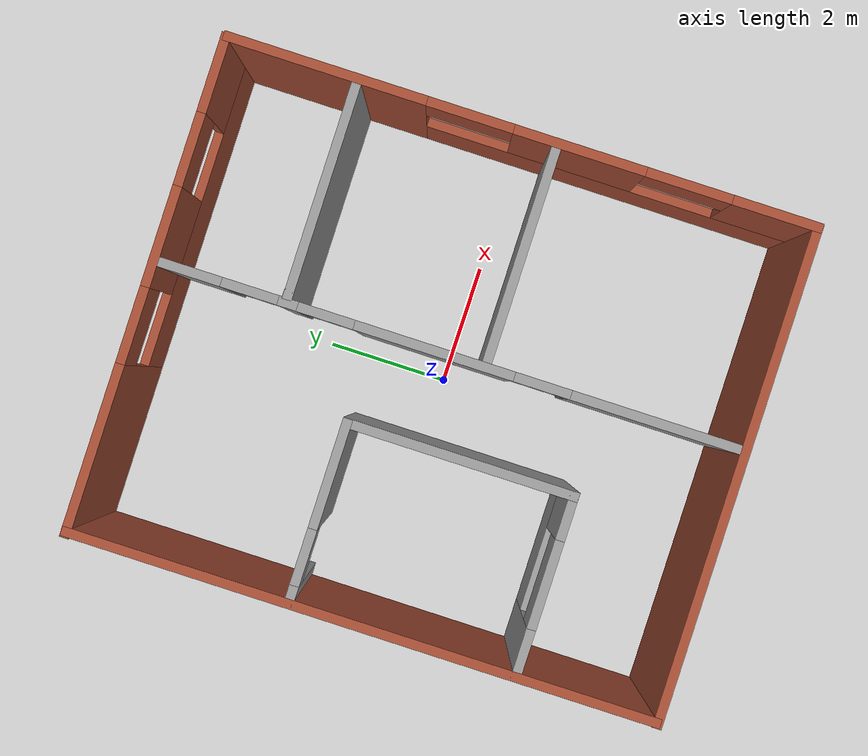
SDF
<sdf version="1.7">
 <world name="default">
  <light name="sun" type="directional">
   <pose>0 0 10 0 -0 0</pose>
   <diffuse>0.8 0.8 0.8 1</diffuse>
   <specular>0.2 0.2 0.2 1</specular>
   <attenuation>
    <range>1000</range>
    <constant>0.9</constant>
    <linear>0.01</linear>
    <quadratic>0.001</quadratic>
   </attenuation>
   <direction>-0.5 0.1 -0.9</direction>
   <spot><inner_angle>0</inner_angle><outer_angle>0</outer_angle><falloff>0</falloff></spot>
  </light>
  <model name="ground_plane">
   <static>1</static>
   <link name="link">
    <collision name="collision">
     <geometry><plane><normal>0 0 1</normal><size>100 100</size></plane></geometry>
     <surface><friction><ode><mu>100</mu><mu2>50</mu2></ode></friction></surface>
    </collision>
    <visual name="visual">
     <cast_shadows>0</cast_shadows>
     <geometry><plane><normal>0 0 1</normal><size>100 100</size></plane></geometry>
     <material>
      <script><uri>file://media/materials/scripts/gazebo.material</uri><name>Gazebo/Grey</name></script>
     </material>
    </visual>
   </link>
  </model>
  <gravity>0 0 -9.8</gravity>
  <magnetic_field>6e-06 2.3e-05 -4.2e-05</magnetic_field>
  <atmosphere type="adiabatic"/>
  <physics type="ode">
   <max_step_size>0.001</max_step_size>
   <real_time_factor>1</real_time_factor>
   <real_time_update_rate>1000</real_time_update_rate>
  </physics>
  <scene><ambient>0.4 0.4 0.4 1</ambient><background>0.7 0.7 0.7 1</background><shadows>1</shadows></scene>
  <audio><device>default</device></audio>
  <spherical_coordinates>
   <surface_model>EARTH_WGS84</surface_model>
   <latitude_deg>0</latitude_deg>
   <longitude_deg>0</longitude_deg>
   <elevation>0</elevation>
   <heading_deg>0</heading_deg>
  </spherical_coordinates>
  <model name="my_world_example">
   <link name="Wall_14">
    <pose>0.509968 2.60791 0 0 -0 0</pose>
    <visual name="Wall_14_Visual">
     <pose>0 0 1.25 0 -0 0</pose>
     <geometry><box><size>0.15 0.15 2.5</size></box></geometry>
     <material>
      <script><uri>file://media/materials/scripts/gazebo.material</uri><name>Gazebo/Grey</name></script>
      <ambient>1 1 1 1</ambient>
      <shader type="pixel"/>
     </material>
     <meta><layer>0</layer></meta>
    </visual>
    <collision name="Wall_14_Collision">
     <pose>0 0 1.25 0 -0 0</pose>
     <geometry><box><size>0.15 0.15 2.5</size></box></geometry>
     <surface>
      <friction>
       <ode><mu>1</mu><mu2>1</mu2><fdir1>0 0 0</fdir1><slip1>0</slip1><slip2>0</slip2></ode>
       <torsional>
        <coefficient>1</coefficient>
        <patch_radius>0</patch_radius>
        <surface_radius>0</surface_radius>
        <use_patch_radius>1</use_patch_radius>
        <ode><slip>0</slip></ode>
       </torsional>
      </friction>
      <bounce><restitution_coefficient>0</restitution_coefficient><threshold>1e+06</threshold></bounce>
      <contact>
       <collide_without_contact>0</collide_without_contact>
       <collide_without_contact_bitmask>1</collide_without_contact_bitmask>
       <collide_bitmask>1</collide_bitmask>
       <ode>
        <soft_cfm>0</soft_cfm>
        <soft_erp>0.2</soft_erp>
        <kp>1e+13</kp>
        <kd>1</kd>
        <max_vel>0.01</max_vel>
        <min_depth>0</min_depth>
       </ode>
       <bullet>
        <split_impulse>1</split_impulse>
        <split_impulse_penetration_threshold>-0.01</split_impulse_penetration_threshold>
        <soft_cfm>0</soft_cfm>
        <soft_erp>0.2</soft_erp>
        <kp>1e+13</kp>
        <kd>1</kd>
       </bullet>
      </contact>
     </surface>
    </collision>
   </link>
   <link name="Wall_3">
    <pose>3.93862 -0.015464 0 0 0 -1.5708</pose>
    <visual name="Wall_3_Visual_4">
     <pose>-0.833377 0 2.15 0 -0 0</pose>
     <geometry><box><size>1.378 0.15 0.7</size></box></geometry>
     <material>
      <script><uri>file://media/materials/scripts/gazebo.material</uri><name>Gazebo/Bricks</name></script>
      <ambient>1 1 1 1</ambient>
      <shader type="pixel"/>
     </material>
     <meta><layer>0</layer></meta>
    </visual>
    <visual name="Wall_3_Visual_5">
     <pose>2.64172 0 2.15 0 -0 0</pose>
     <geometry><box><size>1.37 0.15 0.7</size></box></geometry>
     <material>
      <script><uri>file://media/materials/scripts/gazebo.material</uri><name>Gazebo/Bricks</name></script>
      <ambient>1 1 1 1</ambient>
      <shader type="pixel"/>
     </material>
     <meta><layer>0</layer></meta>
    </visual>
    <visual name="Wall_3_Visual_3">
     <pose>4.03836 0 1.75 0 -0 0</pose>
     <geometry><box><size>1.42328 0.15 1.5</size></box></geometry>
     <material>
      <script><uri>file://media/materials/scripts/gazebo.material</uri><name>Gazebo/Bricks</name></script>
      <ambient>1 1 1 1</ambient>
      <shader type="pixel"/>
     </material>
     <meta><layer>0</layer></meta>
    </visual>
    <visual name="Wall_3_Visual_1">
     <pose>1.61381 0 0.5 0 -0 0</pose>
     <geometry><box><size>6.27238 0.15 1</size></box></geometry>
     <material>
      <script><uri>file://media/materials/scripts/gazebo.material</uri><name>Gazebo/Bricks</name></script>
      <ambient>1 1 1 1</ambient>
      <shader type="pixel"/>
     </material>
     <meta><layer>0</layer></meta>
    </visual>
    <visual name="Wall_3_Visual_2">
     <pose>0.90617 0 1.75 0 -0 0</pose>
     <geometry><box><size>2.10109 0.15 1.5</size></box></geometry>
     <material>
      <script><uri>file://media/materials/scripts/gazebo.material</uri><name>Gazebo/Bricks</name></script>
      <ambient>1 1 1 1</ambient>
      <shader type="pixel"/>
     </material>
     <meta><layer>0</layer></meta>
    </visual>
    <visual name="Wall_3_Visual_0">
     <pose>-3.13619 0 1.25 0 -0 0</pose>
     <geometry><box><size>3.22762 0.15 2.5</size></box></geometry>
     <material>
      <script><uri>file://media/materials/scripts/gazebo.material</uri><name>Gazebo/Bricks</name></script>
      <ambient>1 1 1 1</ambient>
      <shader type="pixel"/>
     </material>
     <meta><layer>0</layer></meta>
    </visual>
    <collision name="Wall_3_Collision_5">
     <pose>2.64172 0 2.15 0 -0 0</pose>
     <geometry><box><size>1.37 0.15 0.7</size></box></geometry>
     <surface>
      <friction>
       <ode><mu>1</mu><mu2>1</mu2><fdir1>0 0 0</fdir1><slip1>0</slip1><slip2>0</slip2></ode>
       <torsional>
        <coefficient>1</coefficient>
        <patch_radius>0</patch_radius>
        <surface_radius>0</surface_radius>
        <use_patch_radius>1</use_patch_radius>
        <ode><slip>0</slip></ode>
       </torsional>
      </friction>
      <bounce><restitution_coefficient>0</restitution_coefficient><threshold>1e+06</threshold></bounce>
      <contact>
       <collide_without_contact>0</collide_without_contact>
       <collide_without_contact_bitmask>1</collide_without_contact_bitmask>
       <collide_bitmask>1</collide_bitmask>
       <ode>
        <soft_cfm>0</soft_cfm>
        <soft_erp>0.2</soft_erp>
        <kp>1e+13</kp>
        <kd>1</kd>
        <max_vel>0.01</max_vel>
        <min_depth>0</min_depth>
       </ode>
       <bullet>
        <split_impulse>1</split_impulse>
        <split_impulse_penetration_threshold>-0.01</split_impulse_penetration_threshold>
        <soft_cfm>0</soft_cfm>
        <soft_erp>0.2</soft_erp>
        <kp>1e+13</kp>
        <kd>1</kd>
       </bullet>
      </contact>
     </surface>
    </collision>
    <collision name="Wall_3_Collision_2">
     <pose>0.90617 0 1.75 0 -0 0</pose>
     <geometry><box><size>2.10109 0.15 1.5</size></box></geometry>
     <surface>
      <friction>
       <ode><mu>1</mu><mu2>1</mu2><fdir1>0 0 0</fdir1><slip1>0</slip1><slip2>0</slip2></ode>
       <torsional>
        <coefficient>1</coefficient>
        <patch_radius>0</patch_radius>
        <surface_radius>0</surface_radius>
        <use_patch_radius>1</use_patch_radius>
        <ode><slip>0</slip></ode>
       </torsional>
      </friction>
      <bounce><restitution_coefficient>0</restitution_coefficient><threshold>1e+06</threshold></bounce>
      <contact>
       <collide_without_contact>0</collide_without_contact>
       <collide_without_contact_bitmask>1</collide_without_contact_bitmask>
       <collide_bitmask>1</collide_bitmask>
       <ode>
        <soft_cfm>0</soft_cfm>
        <soft_erp>0.2</soft_erp>
        <kp>1e+13</kp>
        <kd>1</kd>
        <max_vel>0.01</max_vel>
        <min_depth>0</min_depth>
       </ode>
       <bullet>
        <split_impulse>1</split_impulse>
        <split_impulse_penetration_threshold>-0.01</split_impulse_penetration_threshold>
        <soft_cfm>0</soft_cfm>
        <soft_erp>0.2</soft_erp>
        <kp>1e+13</kp>
        <kd>1</kd>
       </bullet>
      </contact>
     </surface>
    </collision>
    <collision name="Wall_3_Collision_4">
     <pose>-0.833377 0 2.15 0 -0 0</pose>
     <geometry><box><size>1.378 0.15 0.7</size></box></geometry>
     <surface>
      <friction>
       <ode><mu>1</mu><mu2>1</mu2><fdir1>0 0 0</fdir1><slip1>0</slip1><slip2>0</slip2></ode>
       <torsional>
        <coefficient>1</coefficient>
        <patch_radius>0</patch_radius>
        <surface_radius>0</surface_radius>
        <use_patch_radius>1</use_patch_radius>
        <ode><slip>0</slip></ode>
       </torsional>
      </friction>
      <bounce><restitution_coefficient>0</restitution_coefficient><threshold>1e+06</threshold></bounce>
      <contact>
       <collide_without_contact>0</collide_without_contact>
       <collide_without_contact_bitmask>1</collide_without_contact_bitmask>
       <collide_bitmask>1</collide_bitmask>
       <ode>
        <soft_cfm>0</soft_cfm>
        <soft_erp>0.2</soft_erp>
        <kp>1e+13</kp>
        <kd>1</kd>
        <max_vel>0.01</max_vel>
        <min_depth>0</min_depth>
       </ode>
       <bullet>
        <split_impulse>1</split_impulse>
        <split_impulse_penetration_threshold>-0.01</split_impulse_penetration_threshold>
        <soft_cfm>0</soft_cfm>
        <soft_erp>0.2</soft_erp>
        <kp>1e+13</kp>
        <kd>1</kd>
       </bullet>
      </contact>
     </surface>
    </collision>
    <collision name="Wall_3_Collision_3">
     <pose>4.03836 0 1.75 0 -0 0</pose>
     <geometry><box><size>1.42328 0.15 1.5</size></box></geometry>
     <surface>
      <friction>
       <ode><mu>1</mu><mu2>1</mu2><fdir1>0 0 0</fdir1><slip1>0</slip1><slip2>0</slip2></ode>
       <torsional>
        <coefficient>1</coefficient>
        <patch_radius>0</patch_radius>
        <surface_radius>0</surface_radius>
        <use_patch_radius>1</use_patch_radius>
        <ode><slip>0</slip></ode>
       </torsional>
      </friction>
      <bounce><restitution_coefficient>0</restitution_coefficient><threshold>1e+06</threshold></bounce>
      <contact>
       <collide_without_contact>0</collide_without_contact>
       <collide_without_contact_bitmask>1</collide_without_contact_bitmask>
       <collide_bitmask>1</collide_bitmask>
       <ode>
        <soft_cfm>0</soft_cfm>
        <soft_erp>0.2</soft_erp>
        <kp>1e+13</kp>
        <kd>1</kd>
        <max_vel>0.01</max_vel>
        <min_depth>0</min_depth>
       </ode>
       <bullet>
        <split_impulse>1</split_impulse>
        <split_impulse_penetration_threshold>-0.01</split_impulse_penetration_threshold>
        <soft_cfm>0</soft_cfm>
        <soft_erp>0.2</soft_erp>
        <kp>1e+13</kp>
        <kd>1</kd>
       </bullet>
      </contact>
     </surface>
    </collision>
    <collision name="Wall_3_Collision_1">
     <pose>1.61381 0 0.5 0 -0 0</pose>
     <geometry><box><size>6.27238 0.15 1</size></box></geometry>
     <surface>
      <friction>
       <ode><mu>1</mu><mu2>1</mu2><fdir1>0 0 0</fdir1><slip1>0</slip1><slip2>0</slip2></ode>
       <torsional>
        <coefficient>1</coefficient>
        <patch_radius>0</patch_radius>
        <surface_radius>0</surface_radius>
        <use_patch_radius>1</use_patch_radius>
        <ode><slip>0</slip></ode>
       </torsional>
      </friction>
      <bounce><restitution_coefficient>0</restitution_coefficient><threshold>1e+06</threshold></bounce>
      <contact>
       <collide_without_contact>0</collide_without_contact>
       <collide_without_contact_bitmask>1</collide_without_contact_bitmask>
       <collide_bitmask>1</collide_bitmask>
       <ode>
        <soft_cfm>0</soft_cfm>
        <soft_erp>0.2</soft_erp>
        <kp>1e+13</kp>
        <kd>1</kd>
        <max_vel>0.01</max_vel>
        <min_depth>0</min_depth>
       </ode>
       <bullet>
        <split_impulse>1</split_impulse>
        <split_impulse_penetration_threshold>-0.01</split_impulse_penetration_threshold>
        <soft_cfm>0</soft_cfm>
        <soft_erp>0.2</soft_erp>
        <kp>1e+13</kp>
        <kd>1</kd>
       </bullet>
      </contact>
     </surface>
    </collision>
    <collision name="Wall_3_Collision_0">
     <pose>-3.13619 0 1.25 0 -0 0</pose>
     <geometry><box><size>3.22762 0.15 2.5</size></box></geometry>
     <surface>
      <friction>
       <ode><mu>1</mu><mu2>1</mu2><fdir1>0 0 0</fdir1><slip1>0</slip1><slip2>0</slip2></ode>
       <torsional>
        <coefficient>1</coefficient>
        <patch_radius>0</patch_radius>
        <surface_radius>0</surface_radius>
        <use_patch_radius>1</use_patch_radius>
        <ode><slip>0</slip></ode>
       </torsional>
      </friction>
      <bounce><restitution_coefficient>0</restitution_coefficient><threshold>1e+06</threshold></bounce>
      <contact>
       <collide_without_contact>0</collide_without_contact>
       <collide_without_contact_bitmask>1</collide_without_contact_bitmask>
       <collide_bitmask>1</collide_bitmask>
       <ode>
        <soft_cfm>0</soft_cfm>
        <soft_erp>0.2</soft_erp>
        <kp>1e+13</kp>
        <kd>1</kd>
        <max_vel>0.01</max_vel>
        <min_depth>0</min_depth>
       </ode>
       <bullet>
        <split_impulse>1</split_impulse>
        <split_impulse_penetration_threshold>-0.01</split_impulse_penetration_threshold>
        <soft_cfm>0</soft_cfm>
        <soft_erp>0.2</soft_erp>
        <kp>1e+13</kp>
        <kd>1</kd>
       </bullet>
      </contact>
     </surface>
    </collision>
   </link>
   <link name="Wall_33">
    <pose>-3.92017 0.013616 0 0 0 -1.5708</pose>
    <visual name="Wall_33_Visual">
     <pose>0 0 1.25 0 -0 0</pose>
     <geometry><box><size>9.5 0.15 2.5</size></box></geometry>
     <material>
      <script><uri>file://media/materials/scripts/gazebo.material</uri><name>Gazebo/Bricks</name></script>
      <ambient>1 1 1 1</ambient>
      <shader type="pixel"/>
     </material>
     <meta><layer>0</layer></meta>
    </visual>
    <collision name="Wall_33_Collision">
     <pose>0 0 1.25 0 -0 0</pose>
     <geometry><box><size>9.5 0.15 2.5</size></box></geometry>
     <surface>
      <friction>
       <ode><mu>1</mu><mu2>1</mu2><fdir1>0 0 0</fdir1><slip1>0</slip1><slip2>0</slip2></ode>
       <torsional>
        <coefficient>1</coefficient>
        <patch_radius>0</patch_radius>
        <surface_radius>0</surface_radius>
        <use_patch_radius>1</use_patch_radius>
        <ode><slip>0</slip></ode>
       </torsional>
      </friction>
      <bounce><restitution_coefficient>0</restitution_coefficient><threshold>1e+06</threshold></bounce>
      <contact>
       <collide_without_contact>0</collide_without_contact>
       <collide_without_contact_bitmask>1</collide_without_contact_bitmask>
       <collide_bitmask>1</collide_bitmask>
       <ode>
        <soft_cfm>0</soft_cfm>
        <soft_erp>0.2</soft_erp>
        <kp>1e+13</kp>
        <kd>1</kd>
        <max_vel>0.01</max_vel>
        <min_depth>0</min_depth>
       </ode>
       <bullet>
        <split_impulse>1</split_impulse>
        <split_impulse_penetration_threshold>-0.01</split_impulse_penetration_threshold>
        <soft_cfm>0</soft_cfm>
        <soft_erp>0.2</soft_erp>
        <kp>1e+13</kp>
        <kd>1</kd>
       </bullet>
      </contact>
     </surface>
    </collision>
   </link>
   <link name="Wall_35">
    <pose>-2.48639 1.16661 0 0 -0 0</pose>
    <visual name="Wall_35_Visual_1">
     <pose>0.62567 0 1.25 0 -0 0</pose>
     <geometry><box><size>1.74866 0.15 2.5</size></box></geometry>
     <material>
      <script><uri>file://media/materials/scripts/gazebo.material</uri><name>Gazebo/Grey</name></script>
      <ambient>1 1 1 1</ambient>
      <shader type="pixel"/>
     </material>
     <meta><layer>0</layer></meta>
    </visual>
    <visual name="Wall_35_Visual_0">
     <pose>-1.32433 0 1.25 0 -0 0</pose>
     <geometry><box><size>0.35134 0.15 2.5</size></box></geometry>
     <material>
      <script><uri>file://media/materials/scripts/gazebo.material</uri><name>Gazebo/Grey</name></script>
      <ambient>1 1 1 1</ambient>
      <shader type="pixel"/>
     </material>
     <meta><layer>0</layer></meta>
    </visual>
    <visual name="Wall_35_Visual_2">
     <pose>-0.69866 0 2.25 0 -0 0</pose>
     <geometry><box><size>0.9 0.15 0.5</size></box></geometry>
     <material>
      <script><uri>file://media/materials/scripts/gazebo.material</uri><name>Gazebo/Grey</name></script>
      <ambient>1 1 1 1</ambient>
      <shader type="pixel"/>
     </material>
     <meta><layer>0</layer></meta>
    </visual>
    <collision name="Wall_35_Collision_0">
     <pose>-1.32433 0 1.25 0 -0 0</pose>
     <geometry><box><size>0.35134 0.15 2.5</size></box></geometry>
     <surface>
      <friction>
       <ode><mu>1</mu><mu2>1</mu2><fdir1>0 0 0</fdir1><slip1>0</slip1><slip2>0</slip2></ode>
       <torsional>
        <coefficient>1</coefficient>
        <patch_radius>0</patch_radius>
        <surface_radius>0</surface_radius>
        <use_patch_radius>1</use_patch_radius>
        <ode><slip>0</slip></ode>
       </torsional>
      </friction>
      <bounce><restitution_coefficient>0</restitution_coefficient><threshold>1e+06</threshold></bounce>
      <contact>
       <collide_without_contact>0</collide_without_contact>
       <collide_without_contact_bitmask>1</collide_without_contact_bitmask>
       <collide_bitmask>1</collide_bitmask>
       <ode>
        <soft_cfm>0</soft_cfm>
        <soft_erp>0.2</soft_erp>
        <kp>1e+13</kp>
        <kd>1</kd>
        <max_vel>0.01</max_vel>
        <min_depth>0</min_depth>
       </ode>
       <bullet>
        <split_impulse>1</split_impulse>
        <split_impulse_penetration_threshold>-0.01</split_impulse_penetration_threshold>
        <soft_cfm>0</soft_cfm>
        <soft_erp>0.2</soft_erp>
        <kp>1e+13</kp>
        <kd>1</kd>
       </bullet>
      </contact>
     </surface>
    </collision>
    <collision name="Wall_35_Collision_2">
     <pose>-0.69866 0 2.25 0 -0 0</pose>
     <geometry><box><size>0.9 0.15 0.5</size></box></geometry>
     <surface>
      <friction>
       <ode><mu>1</mu><mu2>1</mu2><fdir1>0 0 0</fdir1><slip1>0</slip1><slip2>0</slip2></ode>
       <torsional>
        <coefficient>1</coefficient>
        <patch_radius>0</patch_radius>
        <surface_radius>0</surface_radius>
        <use_patch_radius>1</use_patch_radius>
        <ode><slip>0</slip></ode>
       </torsional>
      </friction>
      <bounce><restitution_coefficient>0</restitution_coefficient><threshold>1e+06</threshold></bounce>
      <contact>
       <collide_without_contact>0</collide_without_contact>
       <collide_without_contact_bitmask>1</collide_without_contact_bitmask>
       <collide_bitmask>1</collide_bitmask>
       <ode>
        <soft_cfm>0</soft_cfm>
        <soft_erp>0.2</soft_erp>
        <kp>1e+13</kp>
        <kd>1</kd>
        <max_vel>0.01</max_vel>
        <min_depth>0</min_depth>
       </ode>
       <bullet>
        <split_impulse>1</split_impulse>
        <split_impulse_penetration_threshold>-0.01</split_impulse_penetration_threshold>
        <soft_cfm>0</soft_cfm>
        <soft_erp>0.2</soft_erp>
        <kp>1e+13</kp>
        <kd>1</kd>
       </bullet>
      </contact>
     </surface>
    </collision>
    <collision name="Wall_35_Collision_1">
     <pose>0.62567 0 1.25 0 -0 0</pose>
     <geometry><box><size>1.74866 0.15 2.5</size></box></geometry>
     <surface>
      <friction>
       <ode><mu>1</mu><mu2>1</mu2><fdir1>0 0 0</fdir1><slip1>0</slip1><slip2>0</slip2></ode>
       <torsional>
        <coefficient>1</coefficient>
        <patch_radius>0</patch_radius>
        <surface_radius>0</surface_radius>
        <use_patch_radius>1</use_patch_radius>
        <ode><slip>0</slip></ode>
       </torsional>
      </friction>
      <bounce><restitution_coefficient>0</restitution_coefficient><threshold>1e+06</threshold></bounce>
      <contact>
       <collide_without_contact>0</collide_without_contact>
       <collide_without_contact_bitmask>1</collide_without_contact_bitmask>
       <collide_bitmask>1</collide_bitmask>
       <ode>
        <soft_cfm>0</soft_cfm>
        <soft_erp>0.2</soft_erp>
        <kp>1e+13</kp>
        <kd>1</kd>
        <max_vel>0.01</max_vel>
        <min_depth>0</min_depth>
       </ode>
       <bullet>
        <split_impulse>1</split_impulse>
        <split_impulse_penetration_threshold>-0.01</split_impulse_penetration_threshold>
        <soft_cfm>0</soft_cfm>
        <soft_erp>0.2</soft_erp>
        <kp>1e+13</kp>
        <kd>1</kd>
       </bullet>
      </contact>
     </surface>
    </collision>
   </link>
   <link name="Wall_38">
    <pose>-0.013622 4.69452 0 0 -0 0</pose>
    <visual name="Wall_38_Visual_4">
     <pose>-0.631709 0 2.15 0 -0 0</pose>
     <geometry><box><size>1.221 0.15 0.7</size></box></geometry>
     <material>
      <script><uri>file://media/materials/scripts/gazebo.material</uri><name>Gazebo/Bricks</name></script>
      <ambient>1 1 1 1</ambient>
      <shader type="pixel"/>
     </material>
     <meta><layer>0</layer></meta>
    </visual>
    <visual name="Wall_38_Visual_5">
     <pose>2.15803 0 2.15 0 -0 0</pose>
     <geometry><box><size>1.163 0.15 0.7</size></box></geometry>
     <material>
      <script><uri>file://media/materials/scripts/gazebo.material</uri><name>Gazebo/Bricks</name></script>
      <ambient>1 1 1 1</ambient>
      <shader type="pixel"/>
     </material>
     <meta><layer>0</layer></meta>
    </visual>
    <visual name="Wall_38_Visual_1">
     <pose>1.3789 0 0.5 0 -0 0</pose>
     <geometry><box><size>5.24221 0.15 1</size></box></geometry>
     <material>
      <script><uri>file://media/materials/scripts/gazebo.material</uri><name>Gazebo/Bricks</name></script>
      <ambient>1 1 1 1</ambient>
      <shader type="pixel"/>
     </material>
     <meta><layer>0</layer></meta>
    </visual>
    <visual name="Wall_38_Visual_2">
     <pose>0.777661 0 1.75 0 -0 0</pose>
     <geometry><box><size>1.59774 0.15 1.5</size></box></geometry>
     <material>
      <script><uri>file://media/materials/scripts/gazebo.material</uri><name>Gazebo/Bricks</name></script>
      <ambient>1 1 1 1</ambient>
      <shader type="pixel"/>
     </material>
     <meta><layer>0</layer></meta>
    </visual>
    <visual name="Wall_38_Visual_3">
     <pose>3.36977 0 1.75 0 -0 0</pose>
     <geometry><box><size>1.26047 0.15 1.5</size></box></geometry>
     <material>
      <script><uri>file://media/materials/scripts/gazebo.material</uri><name>Gazebo/Bricks</name></script>
      <ambient>1 1 1 1</ambient>
      <shader type="pixel"/>
     </material>
     <meta><layer>0</layer></meta>
    </visual>
    <visual name="Wall_38_Visual_0">
     <pose>-2.6211 0 1.25 0 -0 0</pose>
     <geometry><box><size>2.75779 0.15 2.5</size></box></geometry>
     <material>
      <script><uri>file://media/materials/scripts/gazebo.material</uri><name>Gazebo/Bricks</name></script>
      <ambient>1 1 1 1</ambient>
      <shader type="pixel"/>
     </material>
     <meta><layer>0</layer></meta>
    </visual>
    <collision name="Wall_38_Collision_4">
     <pose>-0.631709 0 2.15 0 -0 0</pose>
     <geometry><box><size>1.221 0.15 0.7</size></box></geometry>
     <surface>
      <friction>
       <ode><mu>1</mu><mu2>1</mu2><fdir1>0 0 0</fdir1><slip1>0</slip1><slip2>0</slip2></ode>
       <torsional>
        <coefficient>1</coefficient>
        <patch_radius>0</patch_radius>
        <surface_radius>0</surface_radius>
        <use_patch_radius>1</use_patch_radius>
        <ode><slip>0</slip></ode>
       </torsional>
      </friction>
      <bounce><restitution_coefficient>0</restitution_coefficient><threshold>1e+06</threshold></bounce>
      <contact>
       <collide_without_contact>0</collide_without_contact>
       <collide_without_contact_bitmask>1</collide_without_contact_bitmask>
       <collide_bitmask>1</collide_bitmask>
       <ode>
        <soft_cfm>0</soft_cfm>
        <soft_erp>0.2</soft_erp>
        <kp>1e+13</kp>
        <kd>1</kd>
        <max_vel>0.01</max_vel>
        <min_depth>0</min_depth>
       </ode>
       <bullet>
        <split_impulse>1</split_impulse>
        <split_impulse_penetration_threshold>-0.01</split_impulse_penetration_threshold>
        <soft_cfm>0</soft_cfm>
        <soft_erp>0.2</soft_erp>
        <kp>1e+13</kp>
        <kd>1</kd>
       </bullet>
      </contact>
     </surface>
    </collision>
    <collision name="Wall_38_Collision_2">
     <pose>0.777661 0 1.75 0 -0 0</pose>
     <geometry><box><size>1.59774 0.15 1.5</size></box></geometry>
     <surface>
      <friction>
       <ode><mu>1</mu><mu2>1</mu2><fdir1>0 0 0</fdir1><slip1>0</slip1><slip2>0</slip2></ode>
       <torsional>
        <coefficient>1</coefficient>
        <patch_radius>0</patch_radius>
        <surface_radius>0</surface_radius>
        <use_patch_radius>1</use_patch_radius>
        <ode><slip>0</slip></ode>
       </torsional>
      </friction>
      <bounce><restitution_coefficient>0</restitution_coefficient><threshold>1e+06</threshold></bounce>
      <contact>
       <collide_without_contact>0</collide_without_contact>
       <collide_without_contact_bitmask>1</collide_without_contact_bitmask>
       <collide_bitmask>1</collide_bitmask>
       <ode>
        <soft_cfm>0</soft_cfm>
        <soft_erp>0.2</soft_erp>
        <kp>1e+13</kp>
        <kd>1</kd>
        <max_vel>0.01</max_vel>
        <min_depth>0</min_depth>
       </ode>
       <bullet>
        <split_impulse>1</split_impulse>
        <split_impulse_penetration_threshold>-0.01</split_impulse_penetration_threshold>
        <soft_cfm>0</soft_cfm>
        <soft_erp>0.2</soft_erp>
        <kp>1e+13</kp>
        <kd>1</kd>
       </bullet>
      </contact>
     </surface>
    </collision>
    <collision name="Wall_38_Collision_1">
     <pose>1.3789 0 0.5 0 -0 0</pose>
     <geometry><box><size>5.24221 0.15 1</size></box></geometry>
     <surface>
      <friction>
       <ode><mu>1</mu><mu2>1</mu2><fdir1>0 0 0</fdir1><slip1>0</slip1><slip2>0</slip2></ode>
       <torsional>
        <coefficient>1</coefficient>
        <patch_radius>0</patch_radius>
        <surface_radius>0</surface_radius>
        <use_patch_radius>1</use_patch_radius>
        <ode><slip>0</slip></ode>
       </torsional>
      </friction>
      <bounce><restitution_coefficient>0</restitution_coefficient><threshold>1e+06</threshold></bounce>
      <contact>
       <collide_without_contact>0</collide_without_contact>
       <collide_without_contact_bitmask>1</collide_without_contact_bitmask>
       <collide_bitmask>1</collide_bitmask>
       <ode>
        <soft_cfm>0</soft_cfm>
        <soft_erp>0.2</soft_erp>
        <kp>1e+13</kp>
        <kd>1</kd>
        <max_vel>0.01</max_vel>
        <min_depth>0</min_depth>
       </ode>
       <bullet>
        <split_impulse>1</split_impulse>
        <split_impulse_penetration_threshold>-0.01</split_impulse_penetration_threshold>
        <soft_cfm>0</soft_cfm>
        <soft_erp>0.2</soft_erp>
        <kp>1e+13</kp>
        <kd>1</kd>
       </bullet>
      </contact>
     </surface>
    </collision>
    <collision name="Wall_38_Collision_5">
     <pose>2.15803 0 2.15 0 -0 0</pose>
     <geometry><box><size>1.163 0.15 0.7</size></box></geometry>
     <surface>
      <friction>
       <ode><mu>1</mu><mu2>1</mu2><fdir1>0 0 0</fdir1><slip1>0</slip1><slip2>0</slip2></ode>
       <torsional>
        <coefficient>1</coefficient>
        <patch_radius>0</patch_radius>
        <surface_radius>0</surface_radius>
        <use_patch_radius>1</use_patch_radius>
        <ode><slip>0</slip></ode>
       </torsional>
      </friction>
      <bounce><restitution_coefficient>0</restitution_coefficient><threshold>1e+06</threshold></bounce>
      <contact>
       <collide_without_contact>0</collide_without_contact>
       <collide_without_contact_bitmask>1</collide_without_contact_bitmask>
       <collide_bitmask>1</collide_bitmask>
       <ode>
        <soft_cfm>0</soft_cfm>
        <soft_erp>0.2</soft_erp>
        <kp>1e+13</kp>
        <kd>1</kd>
        <max_vel>0.01</max_vel>
        <min_depth>0</min_depth>
       </ode>
       <bullet>
        <split_impulse>1</split_impulse>
        <split_impulse_penetration_threshold>-0.01</split_impulse_penetration_threshold>
        <soft_cfm>0</soft_cfm>
        <soft_erp>0.2</soft_erp>
        <kp>1e+13</kp>
        <kd>1</kd>
       </bullet>
      </contact>
     </surface>
    </collision>
    <collision name="Wall_38_Collision_3">
     <pose>3.36977 0 1.75 0 -0 0</pose>
     <geometry><box><size>1.26047 0.15 1.5</size></box></geometry>
     <surface>
      <friction>
       <ode><mu>1</mu><mu2>1</mu2><fdir1>0 0 0</fdir1><slip1>0</slip1><slip2>0</slip2></ode>
       <torsional>
        <coefficient>1</coefficient>
        <patch_radius>0</patch_radius>
        <surface_radius>0</surface_radius>
        <use_patch_radius>1</use_patch_radius>
        <ode><slip>0</slip></ode>
       </torsional>
      </friction>
      <bounce><restitution_coefficient>0</restitution_coefficient><threshold>1e+06</threshold></bounce>
      <contact>
       <collide_without_contact>0</collide_without_contact>
       <collide_without_contact_bitmask>1</collide_without_contact_bitmask>
       <collide_bitmask>1</collide_bitmask>
       <ode>
        <soft_cfm>0</soft_cfm>
        <soft_erp>0.2</soft_erp>
        <kp>1e+13</kp>
        <kd>1</kd>
        <max_vel>0.01</max_vel>
        <min_depth>0</min_depth>
       </ode>
       <bullet>
        <split_impulse>1</split_impulse>
        <split_impulse_penetration_threshold>-0.01</split_impulse_penetration_threshold>
        <soft_cfm>0</soft_cfm>
        <soft_erp>0.2</soft_erp>
        <kp>1e+13</kp>
        <kd>1</kd>
       </bullet>
      </contact>
     </surface>
    </collision>
    <collision name="Wall_38_Collision_0">
     <pose>-2.6211 0 1.25 0 -0 0</pose>
     <geometry><box><size>2.75779 0.15 2.5</size></box></geometry>
     <surface>
      <friction>
       <ode><mu>1</mu><mu2>1</mu2><fdir1>0 0 0</fdir1><slip1>0</slip1><slip2>0</slip2></ode>
       <torsional>
        <coefficient>1</coefficient>
        <patch_radius>0</patch_radius>
        <surface_radius>0</surface_radius>
        <use_patch_radius>1</use_patch_radius>
        <ode><slip>0</slip></ode>
       </torsional>
      </friction>
      <bounce><restitution_coefficient>0</restitution_coefficient><threshold>1e+06</threshold></bounce>
      <contact>
       <collide_without_contact>0</collide_without_contact>
       <collide_without_contact_bitmask>1</collide_without_contact_bitmask>
       <collide_bitmask>1</collide_bitmask>
       <ode>
        <soft_cfm>0</soft_cfm>
        <soft_erp>0.2</soft_erp>
        <kp>1e+13</kp>
        <kd>1</kd>
        <max_vel>0.01</max_vel>
        <min_depth>0</min_depth>
       </ode>
       <bullet>
        <split_impulse>1</split_impulse>
        <split_impulse_penetration_threshold>-0.01</split_impulse_penetration_threshold>
        <soft_cfm>0</soft_cfm>
        <soft_erp>0.2</soft_erp>
        <kp>1e+13</kp>
        <kd>1</kd>
       </bullet>
      </contact>
     </surface>
    </collision>
   </link>
   <link name="Wall_42">
    <pose>0.387902 0.000987 0 0 0 -1.5708</pose>
    <inertial>
     <mass>1</mass>
     <inertia><ixx>1</ixx><ixy>0</ixy><ixz>0</ixz><iyy>1</iyy><iyz>0</iyz><izz>1</izz></inertia>
    </inertial>
    <visual name="Wall_42_Visual_0">
     <pose>-4.12408 0 1.25 0 -0 0</pose>
     <geometry><box><size>1.00184 0.15 2.5</size></box></geometry>
     <material>
      <script><uri>file://media/materials/scripts/gazebo.material</uri><name>Gazebo/Grey</name></script>
      <ambient>1 1 1 1</ambient>
      <shader type="pixel"><normal_map>__default__</normal_map></shader>
     </material>
     <meta><layer>0</layer></meta>
    </visual>
    <visual name="Wall_42_Visual_1">
     <pose>-2.5695 0 1.25 0 -0 0</pose>
     <geometry><box><size>0.307325 0.15 2.5</size></box></geometry>
     <material>
      <script><uri>file://media/materials/scripts/gazebo.material</uri><name>Gazebo/Grey</name></script>
      <ambient>1 1 1 1</ambient>
      <shader type="pixel"><normal_map>__default__</normal_map></shader>
     </material>
     <meta><layer>0</layer></meta>
    </visual>
    <visual name="Wall_42_Visual_4">
     <pose>-3.17316 0 2.25 0 -0 0</pose>
     <geometry><box><size>0.9 0.15 0.5</size></box></geometry>
     <material>
      <script><uri>file://media/materials/scripts/gazebo.material</uri><name>Gazebo/Grey</name></script>
      <ambient>1 1 1 1</ambient>
      <shader type="pixel"><normal_map>__default__</normal_map></shader>
     </material>
     <meta><layer>0</layer></meta>
    </visual>
    <visual name="Wall_42_Visual_5">
     <pose>-1.96584 0 2.25 0 -0 0</pose>
     <geometry><box><size>0.9 0.15 0.5</size></box></geometry>
     <material>
      <script><uri>file://media/materials/scripts/gazebo.material</uri><name>Gazebo/Grey</name></script>
      <ambient>1 1 1 1</ambient>
      <shader type="pixel"><normal_map>__default__</normal_map></shader>
     </material>
     <meta><layer>0</layer></meta>
    </visual>
    <visual name="Wall_42_Visual_6">
     <pose>1.47532 0 2.25 0 -0 0</pose>
     <geometry><box><size>0.9 0.15 0.5</size></box></geometry>
     <material>
      <script><uri>file://media/materials/scripts/gazebo.material</uri><name>Gazebo/Grey</name></script>
      <ambient>1 1 1 1</ambient>
      <shader type="pixel"><normal_map>__default__</normal_map></shader>
     </material>
     <meta><layer>0</layer></meta>
    </visual>
    <visual name="Wall_42_Visual_3">
     <pose>3.27516 0 1.25 0 -0 0</pose>
     <geometry><box><size>2.69968 0.15 2.5</size></box></geometry>
     <material>
      <script><uri>file://media/materials/scripts/gazebo.material</uri><name>Gazebo/Grey</name></script>
      <ambient>1 1 1 1</ambient>
      <shader type="pixel"><normal_map>__default__</normal_map></shader>
     </material>
     <meta><layer>0</layer></meta>
    </visual>
    <visual name="Wall_42_Visual_2">
     <pose>-0.245259 0 1.25 0 -0 0</pose>
     <geometry><box><size>2.54116 0.15 2.5</size></box></geometry>
     <material>
      <script><uri>file://media/materials/scripts/gazebo.material</uri><name>Gazebo/Grey</name></script>
      <ambient>1 1 1 1</ambient>
      <shader type="pixel"><normal_map>__default__</normal_map></shader>
     </material>
     <meta><layer>0</layer></meta>
    </visual>
    <collision name="Wall_42_Collision_5">
     <pose>-1.96584 0 2.25 0 -0 0</pose>
     <geometry><box><size>0.9 0.15 0.5</size></box></geometry>
     <surface>
      <friction>
       <ode><mu>1</mu><mu2>1</mu2><fdir1>0 0 0</fdir1><slip1>0</slip1><slip2>0</slip2></ode>
       <torsional>
        <coefficient>1</coefficient>
        <patch_radius>0</patch_radius>
        <surface_radius>0</surface_radius>
        <use_patch_radius>1</use_patch_radius>
        <ode><slip>0</slip></ode>
       </torsional>
      </friction>
      <bounce><restitution_coefficient>0</restitution_coefficient><threshold>1e+06</threshold></bounce>
      <contact>
       <collide_without_contact>0</collide_without_contact>
       <collide_without_contact_bitmask>1</collide_without_contact_bitmask>
       <collide_bitmask>1</collide_bitmask>
       <ode>
        <soft_cfm>0</soft_cfm>
        <soft_erp>0.2</soft_erp>
        <kp>1e+13</kp>
        <kd>1</kd>
        <max_vel>0.01</max_vel>
        <min_depth>0</min_depth>
       </ode>
       <bullet>
        <split_impulse>1</split_impulse>
        <split_impulse_penetration_threshold>-0.01</split_impulse_penetration_threshold>
        <soft_cfm>0</soft_cfm>
        <soft_erp>0.2</soft_erp>
        <kp>1e+13</kp>
        <kd>1</kd>
       </bullet>
      </contact>
     </surface>
    </collision>
    <collision name="Wall_42_Collision_2">
     <pose>-0.245259 0 1.25 0 -0 0</pose>
     <geometry><box><size>2.54116 0.15 2.5</size></box></geometry>
     <surface>
      <friction>
       <ode><mu>1</mu><mu2>1</mu2><fdir1>0 0 0</fdir1><slip1>0</slip1><slip2>0</slip2></ode>
       <torsional>
        <coefficient>1</coefficient>
        <patch_radius>0</patch_radius>
        <surface_radius>0</surface_radius>
        <use_patch_radius>1</use_patch_radius>
        <ode><slip>0</slip></ode>
       </torsional>
      </friction>
      <bounce><restitution_coefficient>0</restitution_coefficient><threshold>1e+06</threshold></bounce>
      <contact>
       <collide_without_contact>0</collide_without_contact>
       <collide_without_contact_bitmask>1</collide_without_contact_bitmask>
       <collide_bitmask>1</collide_bitmask>
       <ode>
        <soft_cfm>0</soft_cfm>
        <soft_erp>0.2</soft_erp>
        <kp>1e+13</kp>
        <kd>1</kd>
        <max_vel>0.01</max_vel>
        <min_depth>0</min_depth>
       </ode>
       <bullet>
        <split_impulse>1</split_impulse>
        <split_impulse_penetration_threshold>-0.01</split_impulse_penetration_threshold>
        <soft_cfm>0</soft_cfm>
        <soft_erp>0.2</soft_erp>
        <kp>1e+13</kp>
        <kd>1</kd>
       </bullet>
      </contact>
     </surface>
    </collision>
    <collision name="Wall_42_Collision_0">
     <pose>-4.12408 0 1.25 0 -0 0</pose>
     <geometry><box><size>1.00184 0.15 2.5</size></box></geometry>
     <surface>
      <friction>
       <ode><mu>1</mu><mu2>1</mu2><fdir1>0 0 0</fdir1><slip1>0</slip1><slip2>0</slip2></ode>
       <torsional>
        <coefficient>1</coefficient>
        <patch_radius>0</patch_radius>
        <surface_radius>0</surface_radius>
        <use_patch_radius>1</use_patch_radius>
        <ode><slip>0</slip></ode>
       </torsional>
      </friction>
      <bounce><restitution_coefficient>0</restitution_coefficient><threshold>1e+06</threshold></bounce>
      <contact>
       <collide_without_contact>0</collide_without_contact>
       <collide_without_contact_bitmask>1</collide_without_contact_bitmask>
       <collide_bitmask>1</collide_bitmask>
       <ode>
        <soft_cfm>0</soft_cfm>
        <soft_erp>0.2</soft_erp>
        <kp>1e+13</kp>
        <kd>1</kd>
        <max_vel>0.01</max_vel>
        <min_depth>0</min_depth>
       </ode>
       <bullet>
        <split_impulse>1</split_impulse>
        <split_impulse_penetration_threshold>-0.01</split_impulse_penetration_threshold>
        <soft_cfm>0</soft_cfm>
        <soft_erp>0.2</soft_erp>
        <kp>1e+13</kp>
        <kd>1</kd>
       </bullet>
      </contact>
     </surface>
    </collision>
    <collision name="Wall_42_Collision_3">
     <pose>3.27516 0 1.25 0 -0 0</pose>
     <geometry><box><size>2.69968 0.15 2.5</size></box></geometry>
     <surface>
      <friction>
       <ode><mu>1</mu><mu2>1</mu2><fdir1>0 0 0</fdir1><slip1>0</slip1><slip2>0</slip2></ode>
       <torsional>
        <coefficient>1</coefficient>
        <patch_radius>0</patch_radius>
        <surface_radius>0</surface_radius>
        <use_patch_radius>1</use_patch_radius>
        <ode><slip>0</slip></ode>
       </torsional>
      </friction>
      <bounce><restitution_coefficient>0</restitution_coefficient><threshold>1e+06</threshold></bounce>
      <contact>
       <collide_without_contact>0</collide_without_contact>
       <collide_without_contact_bitmask>1</collide_without_contact_bitmask>
       <collide_bitmask>1</collide_bitmask>
       <ode>
        <soft_cfm>0</soft_cfm>
        <soft_erp>0.2</soft_erp>
        <kp>1e+13</kp>
        <kd>1</kd>
        <max_vel>0.01</max_vel>
        <min_depth>0</min_depth>
       </ode>
       <bullet>
        <split_impulse>1</split_impulse>
        <split_impulse_penetration_threshold>-0.01</split_impulse_penetration_threshold>
        <soft_cfm>0</soft_cfm>
        <soft_erp>0.2</soft_erp>
        <kp>1e+13</kp>
        <kd>1</kd>
       </bullet>
      </contact>
     </surface>
    </collision>
    <collision name="Wall_42_Collision_4">
     <pose>-3.17316 0 2.25 0 -0 0</pose>
     <geometry><box><size>0.9 0.15 0.5</size></box></geometry>
     <surface>
      <friction>
       <ode><mu>1</mu><mu2>1</mu2><fdir1>0 0 0</fdir1><slip1>0</slip1><slip2>0</slip2></ode>
       <torsional>
        <coefficient>1</coefficient>
        <patch_radius>0</patch_radius>
        <surface_radius>0</surface_radius>
        <use_patch_radius>1</use_patch_radius>
        <ode><slip>0</slip></ode>
       </torsional>
      </friction>
      <bounce><restitution_coefficient>0</restitution_coefficient><threshold>1e+06</threshold></bounce>
      <contact>
       <collide_without_contact>0</collide_without_contact>
       <collide_without_contact_bitmask>1</collide_without_contact_bitmask>
       <collide_bitmask>1</collide_bitmask>
       <ode>
        <soft_cfm>0</soft_cfm>
        <soft_erp>0.2</soft_erp>
        <kp>1e+13</kp>
        <kd>1</kd>
        <max_vel>0.01</max_vel>
        <min_depth>0</min_depth>
       </ode>
       <bullet>
        <split_impulse>1</split_impulse>
        <split_impulse_penetration_threshold>-0.01</split_impulse_penetration_threshold>
        <soft_cfm>0</soft_cfm>
        <soft_erp>0.2</soft_erp>
        <kp>1e+13</kp>
        <kd>1</kd>
       </bullet>
      </contact>
     </surface>
    </collision>
    <collision name="Wall_42_Collision_1">
     <pose>-2.5695 0 1.25 0 -0 0</pose>
     <geometry><box><size>0.307325 0.15 2.5</size></box></geometry>
     <surface>
      <friction>
       <ode><mu>1</mu><mu2>1</mu2><fdir1>0 0 0</fdir1><slip1>0</slip1><slip2>0</slip2></ode>
       <torsional>
        <coefficient>1</coefficient>
        <patch_radius>0</patch_radius>
        <surface_radius>0</surface_radius>
        <use_patch_radius>1</use_patch_radius>
        <ode><slip>0</slip></ode>
       </torsional>
      </friction>
      <bounce><restitution_coefficient>0</restitution_coefficient><threshold>1e+06</threshold></bounce>
      <contact>
       <collide_without_contact>0</collide_without_contact>
       <collide_without_contact_bitmask>1</collide_without_contact_bitmask>
       <collide_bitmask>1</collide_bitmask>
       <ode>
        <soft_cfm>0</soft_cfm>
        <soft_erp>0.2</soft_erp>
        <kp>1e+13</kp>
        <kd>1</kd>
        <max_vel>0.01</max_vel>
        <min_depth>0</min_depth>
       </ode>
       <bullet>
        <split_impulse>1</split_impulse>
        <split_impulse_penetration_threshold>-0.01</split_impulse_penetration_threshold>
        <soft_cfm>0</soft_cfm>
        <soft_erp>0.2</soft_erp>
        <kp>1e+13</kp>
        <kd>1</kd>
       </bullet>
      </contact>
     </surface>
    </collision>
    <collision name="Wall_42_Collision_6">
     <pose>1.47532 0 2.25 0 -0 0</pose>
     <geometry><box><size>0.9 0.15 0.5</size></box></geometry>
     <surface>
      <friction>
       <ode><mu>1</mu><mu2>1</mu2><fdir1>0 0 0</fdir1><slip1>0</slip1><slip2>0</slip2></ode>
       <torsional>
        <coefficient>1</coefficient>
        <patch_radius>0</patch_radius>
        <surface_radius>0</surface_radius>
        <use_patch_radius>1</use_patch_radius>
        <ode><slip>0</slip></ode>
       </torsional>
      </friction>
      <bounce><restitution_coefficient>0</restitution_coefficient><threshold>1e+06</threshold></bounce>
      <contact>
       <collide_without_contact>0</collide_without_contact>
       <collide_without_contact_bitmask>1</collide_without_contact_bitmask>
       <collide_bitmask>1</collide_bitmask>
       <ode>
        <soft_cfm>0</soft_cfm>
        <soft_erp>0.2</soft_erp>
        <kp>1e+13</kp>
        <kd>1</kd>
        <max_vel>0.01</max_vel>
        <min_depth>0</min_depth>
       </ode>
       <bullet>
        <split_impulse>1</split_impulse>
        <split_impulse_penetration_threshold>-0.01</split_impulse_penetration_threshold>
        <soft_cfm>0</soft_cfm>
        <soft_erp>0.2</soft_erp>
        <kp>1e+13</kp>
        <kd>1</kd>
       </bullet>
      </contact>
     </surface>
    </collision>
   </link>
   <link name="Wall_45">
    <pose>-1.05416 -0.637427 0 0 -0 1.5708</pose>
    <visual name="Wall_45_Visual">
     <pose>0 0 1.25 0 -0 0</pose>
     <geometry><box><size>3.75 0.15 2.5</size></box></geometry>
     <material>
      <script><uri>file://media/materials/scripts/gazebo.material</uri><name>Gazebo/Grey</name></script>
      <ambient>1 1 1 1</ambient>
      <shader type="pixel"/>
     </material>
     <meta><layer>0</layer></meta>
    </visual>
    <collision name="Wall_45_Collision">
     <pose>0 0 1.25 0 -0 0</pose>
     <geometry><box><size>3.75 0.15 2.5</size></box></geometry>
     <surface>
      <friction>
       <ode><mu>1</mu><mu2>1</mu2><fdir1>0 0 0</fdir1><slip1>0</slip1><slip2>0</slip2></ode>
       <torsional>
        <coefficient>1</coefficient>
        <patch_radius>0</patch_radius>
        <surface_radius>0</surface_radius>
        <use_patch_radius>1</use_patch_radius>
        <ode><slip>0</slip></ode>
       </torsional>
      </friction>
      <bounce><restitution_coefficient>0</restitution_coefficient><threshold>1e+06</threshold></bounce>
      <contact>
       <collide_without_contact>0</collide_without_contact>
       <collide_without_contact_bitmask>1</collide_without_contact_bitmask>
       <collide_bitmask>1</collide_bitmask>
       <ode>
        <soft_cfm>0</soft_cfm>
        <soft_erp>0.2</soft_erp>
        <kp>1e+13</kp>
        <kd>1</kd>
        <max_vel>0.01</max_vel>
        <min_depth>0</min_depth>
       </ode>
       <bullet>
        <split_impulse>1</split_impulse>
        <split_impulse_penetration_threshold>-0.01</split_impulse_penetration_threshold>
        <soft_cfm>0</soft_cfm>
        <soft_erp>0.2</soft_erp>
        <kp>1e+13</kp>
        <kd>1</kd>
       </bullet>
      </contact>
     </surface>
    </collision>
   </link>
   <link name="Wall_52">
    <pose>-2.47916 -2.43743 0 0 -0 0</pose>
    <visual name="Wall_52_Visual_3">
     <pose>0.017526 0 2.15 0 -0 0</pose>
     <geometry><box><size>1.408 0.15 0.7</size></box></geometry>
     <material>
      <script><uri>file://media/materials/scripts/gazebo.material</uri><name>Gazebo/Grey</name></script>
      <ambient>1 1 1 1</ambient>
      <shader type="pixel"/>
     </material>
     <meta><layer>0</layer></meta>
    </visual>
    <visual name="Wall_52_Visual_0">
     <pose>-1.09324 0 1.25 0 -0 0</pose>
     <geometry><box><size>0.813526 0.15 2.5</size></box></geometry>
     <material>
      <script><uri>file://media/materials/scripts/gazebo.material</uri><name>Gazebo/Grey</name></script>
      <ambient>1 1 1 1</ambient>
      <shader type="pixel"/>
     </material>
     <meta><layer>0</layer></meta>
    </visual>
    <visual name="Wall_52_Visual_2">
     <pose>1.11076 0 1.75 0 -0 0</pose>
     <geometry><box><size>0.778474 0.15 1.5</size></box></geometry>
     <material>
      <script><uri>file://media/materials/scripts/gazebo.material</uri><name>Gazebo/Grey</name></script>
      <ambient>1 1 1 1</ambient>
      <shader type="pixel"/>
     </material>
     <meta><layer>0</layer></meta>
    </visual>
    <visual name="Wall_52_Visual_1">
     <pose>0.406763 0 0.5 0 -0 0</pose>
     <geometry><box><size>2.18647 0.15 1</size></box></geometry>
     <material>
      <script><uri>file://media/materials/scripts/gazebo.material</uri><name>Gazebo/Grey</name></script>
      <ambient>1 1 1 1</ambient>
      <shader type="pixel"/>
     </material>
     <meta><layer>0</layer></meta>
    </visual>
    <collision name="Wall_52_Collision_3">
     <pose>0.017526 0 2.15 0 -0 0</pose>
     <geometry><box><size>1.408 0.15 0.7</size></box></geometry>
     <surface>
      <friction>
       <ode><mu>1</mu><mu2>1</mu2><fdir1>0 0 0</fdir1><slip1>0</slip1><slip2>0</slip2></ode>
       <torsional>
        <coefficient>1</coefficient>
        <patch_radius>0</patch_radius>
        <surface_radius>0</surface_radius>
        <use_patch_radius>1</use_patch_radius>
        <ode><slip>0</slip></ode>
       </torsional>
      </friction>
      <bounce><restitution_coefficient>0</restitution_coefficient><threshold>1e+06</threshold></bounce>
      <contact>
       <collide_without_contact>0</collide_without_contact>
       <collide_without_contact_bitmask>1</collide_without_contact_bitmask>
       <collide_bitmask>1</collide_bitmask>
       <ode>
        <soft_cfm>0</soft_cfm>
        <soft_erp>0.2</soft_erp>
        <kp>1e+13</kp>
        <kd>1</kd>
        <max_vel>0.01</max_vel>
        <min_depth>0</min_depth>
       </ode>
       <bullet>
        <split_impulse>1</split_impulse>
        <split_impulse_penetration_threshold>-0.01</split_impulse_penetration_threshold>
        <soft_cfm>0</soft_cfm>
        <soft_erp>0.2</soft_erp>
        <kp>1e+13</kp>
        <kd>1</kd>
       </bullet>
      </contact>
     </surface>
    </collision>
    <collision name="Wall_52_Collision_2">
     <pose>1.11076 0 1.75 0 -0 0</pose>
     <geometry><box><size>0.778474 0.15 1.5</size></box></geometry>
     <surface>
      <friction>
       <ode><mu>1</mu><mu2>1</mu2><fdir1>0 0 0</fdir1><slip1>0</slip1><slip2>0</slip2></ode>
       <torsional>
        <coefficient>1</coefficient>
        <patch_radius>0</patch_radius>
        <surface_radius>0</surface_radius>
        <use_patch_radius>1</use_patch_radius>
        <ode><slip>0</slip></ode>
       </torsional>
      </friction>
      <bounce><restitution_coefficient>0</restitution_coefficient><threshold>1e+06</threshold></bounce>
      <contact>
       <collide_without_contact>0</collide_without_contact>
       <collide_without_contact_bitmask>1</collide_without_contact_bitmask>
       <collide_bitmask>1</collide_bitmask>
       <ode>
        <soft_cfm>0</soft_cfm>
        <soft_erp>0.2</soft_erp>
        <kp>1e+13</kp>
        <kd>1</kd>
        <max_vel>0.01</max_vel>
        <min_depth>0</min_depth>
       </ode>
       <bullet>
        <split_impulse>1</split_impulse>
        <split_impulse_penetration_threshold>-0.01</split_impulse_penetration_threshold>
        <soft_cfm>0</soft_cfm>
        <soft_erp>0.2</soft_erp>
        <kp>1e+13</kp>
        <kd>1</kd>
       </bullet>
      </contact>
     </surface>
    </collision>
    <collision name="Wall_52_Collision_0">
     <pose>-1.09324 0 1.25 0 -0 0</pose>
     <geometry><box><size>0.813526 0.15 2.5</size></box></geometry>
     <surface>
      <friction>
       <ode><mu>1</mu><mu2>1</mu2><fdir1>0 0 0</fdir1><slip1>0</slip1><slip2>0</slip2></ode>
       <torsional>
        <coefficient>1</coefficient>
        <patch_radius>0</patch_radius>
        <surface_radius>0</surface_radius>
        <use_patch_radius>1</use_patch_radius>
        <ode><slip>0</slip></ode>
       </torsional>
      </friction>
      <bounce><restitution_coefficient>0</restitution_coefficient><threshold>1e+06</threshold></bounce>
      <contact>
       <collide_without_contact>0</collide_without_contact>
       <collide_without_contact_bitmask>1</collide_without_contact_bitmask>
       <collide_bitmask>1</collide_bitmask>
       <ode>
        <soft_cfm>0</soft_cfm>
        <soft_erp>0.2</soft_erp>
        <kp>1e+13</kp>
        <kd>1</kd>
        <max_vel>0.01</max_vel>
        <min_depth>0</min_depth>
       </ode>
       <bullet>
        <split_impulse>1</split_impulse>
        <split_impulse_penetration_threshold>-0.01</split_impulse_penetration_threshold>
        <soft_cfm>0</soft_cfm>
        <soft_erp>0.2</soft_erp>
        <kp>1e+13</kp>
        <kd>1</kd>
       </bullet>
      </contact>
     </surface>
    </collision>
    <collision name="Wall_52_Collision_1">
     <pose>0.406763 0 0.5 0 -0 0</pose>
     <geometry><box><size>2.18647 0.15 1</size></box></geometry>
     <surface>
      <friction>
       <ode><mu>1</mu><mu2>1</mu2><fdir1>0 0 0</fdir1><slip1>0</slip1><slip2>0</slip2></ode>
       <torsional>
        <coefficient>1</coefficient>
        <patch_radius>0</patch_radius>
        <surface_radius>0</surface_radius>
        <use_patch_radius>1</use_patch_radius>
        <ode><slip>0</slip></ode>
       </torsional>
      </friction>
      <bounce><restitution_coefficient>0</restitution_coefficient><threshold>1e+06</threshold></bounce>
      <contact>
       <collide_without_contact>0</collide_without_contact>
       <collide_without_contact_bitmask>1</collide_without_contact_bitmask>
       <collide_bitmask>1</collide_bitmask>
       <ode>
        <soft_cfm>0</soft_cfm>
        <soft_erp>0.2</soft_erp>
        <kp>1e+13</kp>
        <kd>1</kd>
        <max_vel>0.01</max_vel>
        <min_depth>0</min_depth>
       </ode>
       <bullet>
        <split_impulse>1</split_impulse>
        <split_impulse_penetration_threshold>-0.01</split_impulse_penetration_threshold>
        <soft_cfm>0</soft_cfm>
        <soft_erp>0.2</soft_erp>
        <kp>1e+13</kp>
        <kd>1</kd>
       </bullet>
      </contact>
     </surface>
    </collision>
   </link>
   <link name="Wall_59">
    <pose>-0.003508 -4.69452 0 0 -0 3.14159</pose>
    <visual name="Wall_59_Visual">
     <pose>0 0 1.25 0 -0 0</pose>
     <geometry><box><size>8 0.15 2.5</size></box></geometry>
     <material>
      <script><uri>file://media/materials/scripts/gazebo.material</uri><name>Gazebo/Bricks</name></script>
      <ambient>1 1 1 1</ambient>
      <shader type="pixel"/>
     </material>
     <meta><layer>0</layer></meta>
    </visual>
    <collision name="Wall_59_Collision">
     <pose>0 0 1.25 0 -0 0</pose>
     <geometry><box><size>8 0.15 2.5</size></box></geometry>
     <surface>
      <friction>
       <ode><mu>1</mu><mu2>1</mu2><fdir1>0 0 0</fdir1><slip1>0</slip1><slip2>0</slip2></ode>
       <torsional>
        <coefficient>1</coefficient>
        <patch_radius>0</patch_radius>
        <surface_radius>0</surface_radius>
        <use_patch_radius>1</use_patch_radius>
        <ode><slip>0</slip></ode>
       </torsional>
      </friction>
      <bounce><restitution_coefficient>0</restitution_coefficient><threshold>1e+06</threshold></bounce>
      <contact>
       <collide_without_contact>0</collide_without_contact>
       <collide_without_contact_bitmask>1</collide_without_contact_bitmask>
       <collide_bitmask>1</collide_bitmask>
       <ode>
        <soft_cfm>0</soft_cfm>
        <soft_erp>0.2</soft_erp>
        <kp>1e+13</kp>
        <kd>1</kd>
        <max_vel>0.01</max_vel>
        <min_depth>0</min_depth>
       </ode>
       <bullet>
        <split_impulse>1</split_impulse>
        <split_impulse_penetration_threshold>-0.01</split_impulse_penetration_threshold>
        <soft_cfm>0</soft_cfm>
        <soft_erp>0.2</soft_erp>
        <kp>1e+13</kp>
        <kd>1</kd>
       </bullet>
      </contact>
     </surface>
    </collision>
   </link>
   <link name="Wall_8">
    <pose>2.18497 2.60122 0 0 -0 0</pose>
    <inertial>
     <mass>1</mass>
     <inertia><ixx>1</ixx><ixy>0</ixy><ixz>0</ixz><iyy>1</iyy><iyz>0</iyz><izz>1</izz></inertia>
    </inertial>
    <visual name="Wall_8_Visual">
     <pose>0 0 1.25 0 -0 0</pose>
     <geometry><box><size>3.5 0.15 2.5</size></box></geometry>
     <material>
      <script><uri>file://media/materials/scripts/gazebo.material</uri><name>Gazebo/Grey</name></script>
      <ambient>1 1 1 1</ambient>
      <shader type="pixel"><normal_map>__default__</normal_map></shader>
     </material>
     <meta><layer>0</layer></meta>
    </visual>
    <collision name="Wall_8_Collision">
     <pose>0 0 1.25 0 -0 0</pose>
     <geometry><box><size>3.5 0.15 2.5</size></box></geometry>
     <surface>
      <friction>
       <ode><mu>1</mu><mu2>1</mu2><fdir1>0 0 0</fdir1><slip1>0</slip1><slip2>0</slip2></ode>
       <torsional>
        <coefficient>1</coefficient>
        <patch_radius>0</patch_radius>
        <surface_radius>0</surface_radius>
        <use_patch_radius>1</use_patch_radius>
        <ode><slip>0</slip></ode>
       </torsional>
      </friction>
      <bounce><restitution_coefficient>0</restitution_coefficient><threshold>1e+06</threshold></bounce>
      <contact>
       <collide_without_contact>0</collide_without_contact>
       <collide_without_contact_bitmask>1</collide_without_contact_bitmask>
       <collide_bitmask>1</collide_bitmask>
       <ode>
        <soft_cfm>0</soft_cfm>
        <soft_erp>0.2</soft_erp>
        <kp>1e+13</kp>
        <kd>1</kd>
        <max_vel>0.01</max_vel>
        <min_depth>0</min_depth>
       </ode>
       <bullet>
        <split_impulse>1</split_impulse>
        <split_impulse_penetration_threshold>-0.01</split_impulse_penetration_threshold>
        <soft_cfm>0</soft_cfm>
        <soft_erp>0.2</soft_erp>
        <kp>1e+13</kp>
        <kd>1</kd>
       </bullet>
      </contact>
     </surface>
    </collision>
   </link>
   <link name="Wall_8_clone">
    <pose>2.12872 -0.565969 0 0 -0 0</pose>
    <inertial>
     <mass>1</mass>
     <inertia><ixx>1</ixx><ixy>0</ixy><ixz>0</ixz><iyy>1</iyy><iyz>0</iyz><izz>1</izz></inertia>
    </inertial>
    <visual name="Wall_8_Visual">
     <pose>0 0 1.25 0 -0 0</pose>
     <geometry><box><size>3.5 0.15 2.5</size></box></geometry>
     <material>
      <script><uri>file://media/materials/scripts/gazebo.material</uri><name>Gazebo/Grey</name></script>
      <ambient>1 1 1 1</ambient>
      <shader type="pixel"><normal_map>__default__</normal_map></shader>
      <diffuse>0.7 0.7 0.7 1</diffuse>
      <specular>0.01 0.01 0.01 1</specular>
      <emissive>0 0 0 1</emissive>
     </material>
     <meta><layer>0</layer></meta>
    </visual>
    <collision name="Wall_8_Collision">
     <pose>0 0 1.25 0 -0 0</pose>
     <geometry><box><size>3.5 0.15 2.5</size></box></geometry>
     <surface>
      <friction>
       <ode><mu>1</mu><mu2>1</mu2><fdir1>0 0 0</fdir1><slip1>0</slip1><slip2>0</slip2></ode>
       <torsional>
        <coefficient>1</coefficient>
        <patch_radius>0</patch_radius>
        <surface_radius>0</surface_radius>
        <use_patch_radius>1</use_patch_radius>
        <ode><slip>0</slip></ode>
       </torsional>
      </friction>
      <bounce><restitution_coefficient>0</restitution_coefficient><threshold>1e+06</threshold></bounce>
      <contact>
       <collide_without_contact>0</collide_without_contact>
       <collide_without_contact_bitmask>1</collide_without_contact_bitmask>
       <collide_bitmask>1</collide_bitmask>
       <ode>
        <soft_cfm>0</soft_cfm>
        <soft_erp>0.2</soft_erp>
        <kp>1e+13</kp>
        <kd>1</kd>
        <max_vel>0.01</max_vel>
        <min_depth>0</min_depth>
       </ode>
       <bullet>
        <split_impulse>1</split_impulse>
        <split_impulse_penetration_threshold>-0.01</split_impulse_penetration_threshold>
        <soft_cfm>0</soft_cfm>
        <soft_erp>0.2</soft_erp>
        <kp>1e+13</kp>
        <kd>1</kd>
       </bullet>
      </contact>
     </surface>
    </collision>
   </link>
   <static>1</static>
   <pose>-0.010256 0.034812 0 0 -0 0</pose>
  </model>
 </world>
</sdf>
